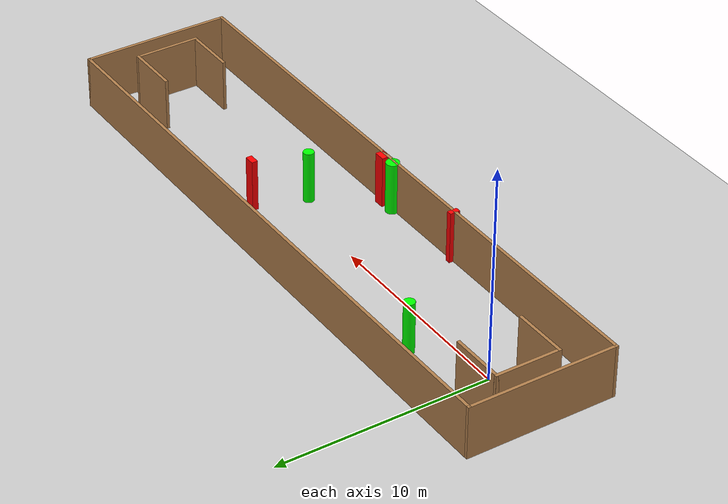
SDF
<sdf version="1.7">
 <world name="default">
  <light name="sun" type="directional">
   <pose>0 0 10 0 -0 0</pose>
   <diffuse>0.8 0.8 0.8 1</diffuse>
   <specular>0.2 0.2 0.2 1</specular>
   <attenuation>
    <range>1000</range>
    <constant>0.9</constant>
    <linear>0.01</linear>
    <quadratic>0.001</quadratic>
   </attenuation>
   <direction>-0.5 0.1 -0.9</direction>
   <spot><inner_angle>0</inner_angle><outer_angle>0</outer_angle><falloff>0</falloff></spot>
  </light>
  <model name="ground_plane">
   <static>1</static>
   <link name="link">
    <collision name="collision">
     <geometry><plane><normal>0 0 1</normal><size>100 100</size></plane></geometry>
     <surface>
      <contact><collide_bitmask>65535</collide_bitmask></contact>
      <friction><ode><mu>100</mu><mu2>50</mu2></ode></friction>
     </surface>
    </collision>
    <visual name="visual">
     <cast_shadows>0</cast_shadows>
     <geometry><plane><normal>0 0 1</normal><size>100 100</size></plane></geometry>
     <material>
      <script><uri>file://media/materials/scripts/gazebo.material</uri><name>Gazebo/Grey</name></script>
     </material>
    </visual>
   </link>
  </model>
  <gravity>0 0 -9.8</gravity>
  <magnetic_field>6e-06 2.3e-05 -4.2e-05</magnetic_field>
  <atmosphere type="adiabatic"/>
  <physics type="ode">
   <max_step_size>0.001</max_step_size>
   <real_time_factor>1</real_time_factor>
   <real_time_update_rate>1000</real_time_update_rate>
  </physics>
  <scene><ambient>0.4 0.4 0.4 1</ambient><background>0.7 0.7 0.7 1</background><shadows>1</shadows></scene>
  <spherical_coordinates>
   <surface_model>EARTH_WGS84</surface_model>
   <latitude_deg>0</latitude_deg>
   <longitude_deg>0</longitude_deg>
   <elevation>0</elevation>
   <heading_deg>0</heading_deg>
  </spherical_coordinates>
  <model name="my_base_walls">
   <link name="Wall_0">
    <collision name="Wall_0_Collision">
     <geometry><box><size>7.15 0.15 2.5</size></box></geometry>
     <pose>0 0 1.25 0 -0 0</pose>
    </collision>
    <visual name="Wall_0_Visual">
     <pose>0 0 1.25 0 -0 0</pose>
     <geometry><box><size>7.15 0.15 2.5</size></box></geometry>
     <material>
      <script><uri>file://media/materials/scripts/gazebo.material</uri><name>Gazebo/Wood</name></script>
      <ambient>1 1 1 1</ambient>
     </material>
     <meta><layer>0</layer></meta>
    </visual>
    <pose>-15 0 0 0 -0 1.5708</pose>
   </link>
   <link name="Wall_10">
    <collision name="Wall_10_Collision">
     <geometry><box><size>2.65 0.15 2.5</size></box></geometry>
     <pose>0 0 1.25 0 -0 0</pose>
    </collision>
    <visual name="Wall_10_Visual">
     <pose>0 0 1.25 0 -0 0</pose>
     <geometry><box><size>2.65 0.15 2.5</size></box></geometry>
     <material>
      <script><uri>file://media/materials/scripts/gazebo.material</uri><name>Gazebo/Wood</name></script>
      <ambient>1 1 1 1</ambient>
     </material>
     <meta><layer>0</layer></meta>
    </visual>
    <pose>-12.75 -1.5 0 0 -0 0</pose>
   </link>
   <link name="Wall_12">
    <collision name="Wall_12_Collision">
     <geometry><box><size>2.65 0.15 2.5</size></box></geometry>
     <pose>0 0 1.25 0 -0 0</pose>
    </collision>
    <visual name="Wall_12_Visual">
     <pose>0 0 1.25 0 -0 0</pose>
     <geometry><box><size>2.65 0.15 2.5</size></box></geometry>
     <material>
      <script><uri>file://media/materials/scripts/gazebo.material</uri><name>Gazebo/Wood</name></script>
      <ambient>1 1 1 1</ambient>
     </material>
     <meta><layer>0</layer></meta>
    </visual>
    <pose>-12.75 1.5 0 0 -0 0</pose>
   </link>
   <link name="Wall_14">
    <collision name="Wall_14_Collision">
     <geometry><box><size>3.15 0.15 2.5</size></box></geometry>
     <pose>0 0 1.25 0 -0 0</pose>
    </collision>
    <visual name="Wall_14_Visual">
     <pose>0 0 1.25 0 -0 0</pose>
     <geometry><box><size>3.15 0.15 2.5</size></box></geometry>
     <material>
      <script><uri>file://media/materials/scripts/gazebo.material</uri><name>Gazebo/Wood</name></script>
      <ambient>1 1 1 1</ambient>
     </material>
     <meta><layer>0</layer></meta>
    </visual>
    <pose>14 0 0 0 -0 -1.5708</pose>
   </link>
   <link name="Wall_15">
    <collision name="Wall_15_Collision">
     <geometry><box><size>2.65 0.15 2.5</size></box></geometry>
     <pose>0 0 1.25 0 -0 0</pose>
    </collision>
    <visual name="Wall_15_Visual">
     <pose>0 0 1.25 0 -0 0</pose>
     <geometry><box><size>2.65 0.15 2.5</size></box></geometry>
     <material>
      <script><uri>file://media/materials/scripts/gazebo.material</uri><name>Gazebo/Wood</name></script>
      <ambient>1 1 1 1</ambient>
     </material>
     <meta><layer>0</layer></meta>
    </visual>
    <pose>12.75 -1.5 0 0 -0 3.14159</pose>
   </link>
   <link name="Wall_17">
    <collision name="Wall_17_Collision">
     <geometry><box><size>2.65 0.15 2.5</size></box></geometry>
     <pose>0 0 1.25 0 -0 0</pose>
    </collision>
    <visual name="Wall_17_Visual">
     <pose>0 0 1.25 0 -0 0</pose>
     <geometry><box><size>2.65 0.15 2.5</size></box></geometry>
     <material>
      <script><uri>file://media/materials/scripts/gazebo.material</uri><name>Gazebo/Wood</name></script>
      <ambient>1 1 1 1</ambient>
     </material>
     <meta><layer>0</layer></meta>
    </visual>
    <pose>12.75 1.5 0 0 -0 3.14159</pose>
   </link>
   <link name="Wall_2">
    <collision name="Wall_2_Collision">
     <geometry><box><size>30.15 0.15 2.5</size></box></geometry>
     <pose>0 0 1.25 0 -0 0</pose>
    </collision>
    <visual name="Wall_2_Visual">
     <pose>0 0 1.25 0 -0 0</pose>
     <geometry><box><size>30.15 0.15 2.5</size></box></geometry>
     <material>
      <script><uri>file://media/materials/scripts/gazebo.material</uri><name>Gazebo/Wood</name></script>
      <ambient>1 1 1 1</ambient>
     </material>
     <meta><layer>0</layer></meta>
    </visual>
    <pose>-0 -3.5 0 0 -0 0</pose>
   </link>
   <link name="Wall_4">
    <collision name="Wall_4_Collision">
     <geometry><box><size>30.15 0.15 2.5</size></box></geometry>
     <pose>0 0 1.25 0 -0 0</pose>
    </collision>
    <visual name="Wall_4_Visual">
     <pose>0 0 1.25 0 -0 0</pose>
     <geometry><box><size>30.15 0.15 2.5</size></box></geometry>
     <material>
      <script><uri>file://media/materials/scripts/gazebo.material</uri><name>Gazebo/Wood</name></script>
      <ambient>1 1 1 1</ambient>
     </material>
     <meta><layer>0</layer></meta>
    </visual>
    <pose>-0 3.5 0 0 -0 0</pose>
   </link>
   <link name="Wall_6">
    <collision name="Wall_6_Collision">
     <geometry><box><size>7.15 0.15 2.5</size></box></geometry>
     <pose>0 0 1.25 0 -0 0</pose>
    </collision>
    <visual name="Wall_6_Visual">
     <pose>0 0 1.25 0 -0 0</pose>
     <geometry><box><size>7.15 0.15 2.5</size></box></geometry>
     <material>
      <script><uri>file://media/materials/scripts/gazebo.material</uri><name>Gazebo/Wood</name></script>
      <ambient>1 1 1 1</ambient>
     </material>
     <meta><layer>0</layer></meta>
    </visual>
    <pose>15 0 0 0 -0 -1.5708</pose>
   </link>
   <link name="Wall_9">
    <collision name="Wall_9_Collision">
     <geometry><box><size>3.15 0.15 2.5</size></box></geometry>
     <pose>0 0 1.25 0 -0 0</pose>
    </collision>
    <visual name="Wall_9_Visual">
     <pose>0 0 1.25 0 -0 0</pose>
     <geometry><box><size>3.15 0.15 2.5</size></box></geometry>
     <material>
      <script><uri>file://media/materials/scripts/gazebo.material</uri><name>Gazebo/Wood</name></script>
      <ambient>1 1 1 1</ambient>
     </material>
     <meta><layer>0</layer></meta>
    </visual>
    <pose>-14 0 0 0 -0 -1.5708</pose>
   </link>
   <static>1</static>
   <pose>11.5 0 0 0 -0 0</pose>
  </model>
  <model name="cylinder1">
   <static>1</static>
   <link name="link">
    <inertial>
     <mass>1</mass>
     <inertia><ixx>0.5</ixx><ixy>0</ixy><ixz>0</ixz><iyy>0.5</iyy><iyz>0</iyz><izz>1</izz></inertia>
    </inertial>
    <collision name="collision">
     <geometry><cylinder><radius>0.2581062481169571</radius><length>2.5</length></cylinder></geometry>
    </collision>
    <visual name="visual">
     <geometry><cylinder><radius>0.2581062481169571</radius><length>2.5</length></cylinder></geometry>
     <material>
      <ambient>0 1 0 1</ambient>
      <diffuse>0 1 0 1</diffuse>
      <specular>0.1 0.1 0.1 1</specular>
      <emissive>0 0 0 0</emissive>
     </material>
    </visual>
   </link>
   <pose>3.229241465105769 1.6531412365133145 1.25 0 0 0</pose>
  </model>
  <model name="cylinder2">
   <static>1</static>
   <link name="link">
    <inertial>
     <mass>1</mass>
     <inertia><ixx>0.5</ixx><ixy>0</ixy><ixz>0</ixz><iyy>0.5</iyy><iyz>0</iyz><izz>1</izz></inertia>
    </inertial>
    <collision name="collision">
     <geometry><cylinder><radius>0.2533969503173361</radius><length>2.5</length></cylinder></geometry>
    </collision>
    <visual name="visual">
     <geometry><cylinder><radius>0.2533969503173361</radius><length>2.5</length></cylinder></geometry>
     <material>
      <ambient>0 1 0 1</ambient>
      <diffuse>0 1 0 1</diffuse>
      <specular>0.1 0.1 0.1 1</specular>
      <emissive>0 0 0 0</emissive>
     </material>
    </visual>
   </link>
   <pose>14.592502101439562 -0.7844397734717994 1.25 0 0 0</pose>
  </model>
  <model name="cylinder3">
   <static>1</static>
   <link name="link">
    <inertial>
     <mass>1</mass>
     <inertia><ixx>0.5</ixx><ixy>0</ixy><ixz>0</ixz><iyy>0.5</iyy><iyz>0</iyz><izz>1</izz></inertia>
    </inertial>
    <collision name="collision">
     <geometry><cylinder><radius>0.31537903799008676</radius><length>2.5</length></cylinder></geometry>
    </collision>
    <visual name="visual">
     <geometry><cylinder><radius>0.31537903799008676</radius><length>2.5</length></cylinder></geometry>
     <material>
      <ambient>0 1 0 1</ambient>
      <diffuse>0 1 0 1</diffuse>
      <specular>0.1 0.1 0.1 1</specular>
      <emissive>0 0 0 0</emissive>
     </material>
    </visual>
   </link>
   <pose>11.941755652759225 -3.3831066927750135 1.25 0 0 0</pose>
  </model>
  <model name="box1">
   <static>1</static>
   <link name="link">
    <inertial>
     <mass>1</mass>
     <inertia><ixx>0.083</ixx><ixy>0</ixy><ixz>0</ixz><iyy>0.083</iyy><iyz>0</iyz><izz>0.083</izz></inertia>
    </inertial>
    <collision name="collision">
     <geometry><box><size>0.533390908725424 0.3907678140534474 2.5</size></box></geometry>
    </collision>
    <visual name="visual">
     <geometry><box><size>0.533390908725424 0.3907678140534474 2.5</size></box></geometry>
     <material>
      <ambient>1 0 0 1</ambient>
      <diffuse>1 0 0 1</diffuse>
      <specular>0.1 0.1 0.1 1</specular>
      <emissive>0 0 0 0</emissive>
     </material>
    </visual>
    <sensor name="my_contact" type="contact">
     <contact><collision>box_collision</collision><topic>__default_topic__</topic></contact>
    </sensor>
   </link>
   <pose>12.666539578879204 -3.348093179473856 1.25 0 0 0</pose>
  </model>
  <model name="box2">
   <static>1</static>
   <link name="link">
    <inertial>
     <mass>1</mass>
     <inertia><ixx>0.083</ixx><ixy>0</ixy><ixz>0</ixz><iyy>0.083</iyy><iyz>0</iyz><izz>0.083</izz></inertia>
    </inertial>
    <collision name="collision">
     <geometry><box><size>0.2500891286909612 0.4753120767132801 2.5</size></box></geometry>
    </collision>
    <visual name="visual">
     <geometry><box><size>0.2500891286909612 0.4753120767132801 2.5</size></box></geometry>
     <material>
      <ambient>1 0 0 1</ambient>
      <diffuse>1 0 0 1</diffuse>
      <specular>0.1 0.1 0.1 1</specular>
      <emissive>0 0 0 0</emissive>
     </material>
    </visual>
    <sensor name="my_contact" type="contact">
     <contact><collision>box_collision</collision><topic>__default_topic__</topic></contact>
    </sensor>
   </link>
   <pose>7.494939693985446 -3.459700842437564 1.25 0 0 0</pose>
  </model>
  <model name="box3">
   <static>1</static>
   <link name="link">
    <inertial>
     <mass>1</mass>
     <inertia><ixx>0.083</ixx><ixy>0</ixy><ixz>0</ixz><iyy>0.083</iyy><iyz>0</iyz><izz>0.083</izz></inertia>
    </inertial>
    <collision name="collision">
     <geometry><box><size>0.49397061037053147 0.2864822161730428 2.5</size></box></geometry>
    </collision>
    <visual name="visual">
     <geometry><box><size>0.49397061037053147 0.2864822161730428 2.5</size></box></geometry>
     <material>
      <ambient>1 0 0 1</ambient>
      <diffuse>1 0 0 1</diffuse>
      <specular>0.1 0.1 0.1 1</specular>
      <emissive>0 0 0 0</emissive>
     </material>
    </visual>
    <sensor name="my_contact" type="contact">
     <contact><collision>box_collision</collision><topic>__default_topic__</topic></contact>
    </sensor>
   </link>
   <pose>15.413824216538693 1.5882501496898085 1.25 0 0 0</pose>
  </model>
 </world>
</sdf>
